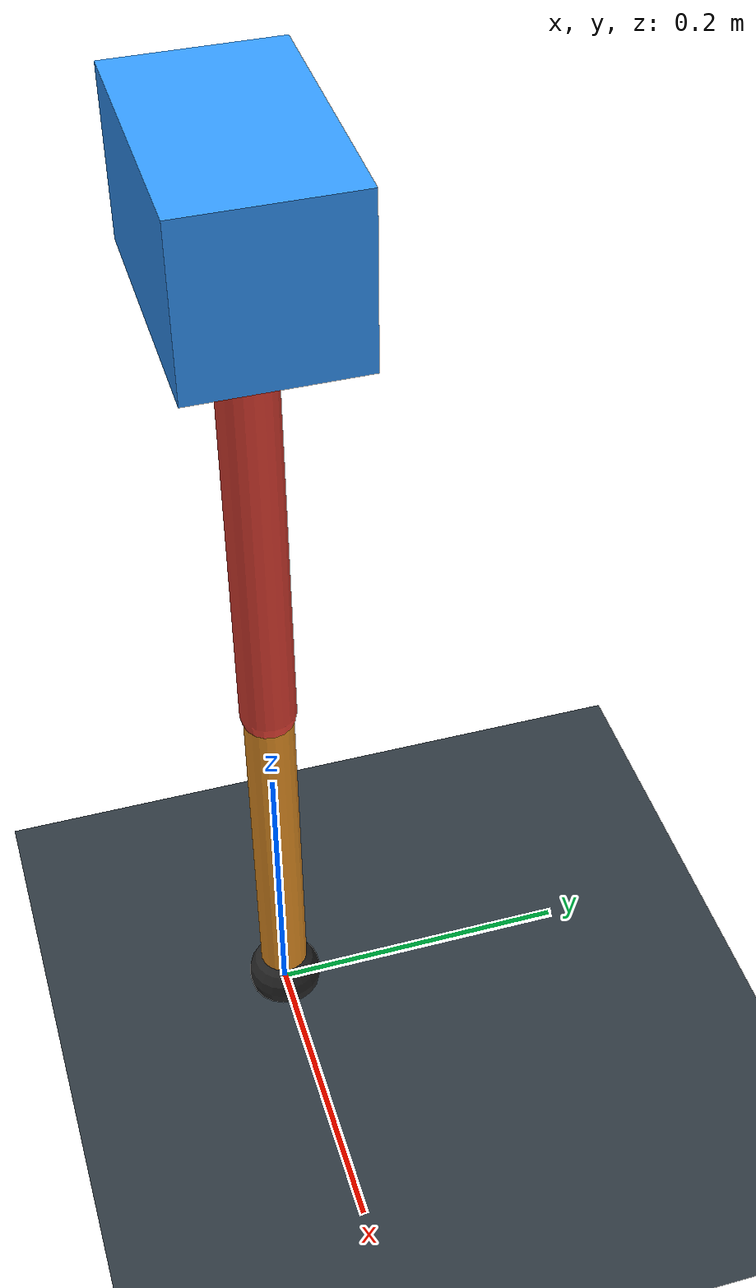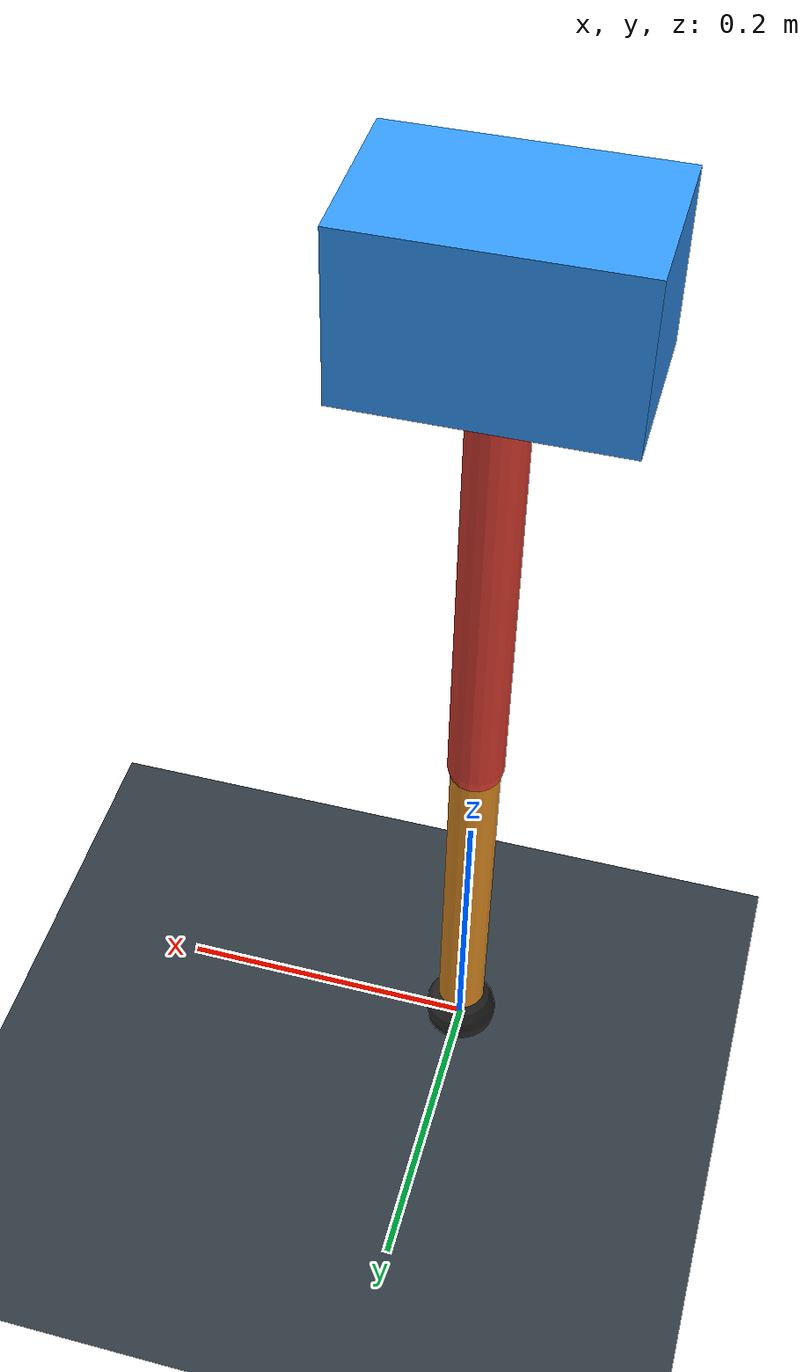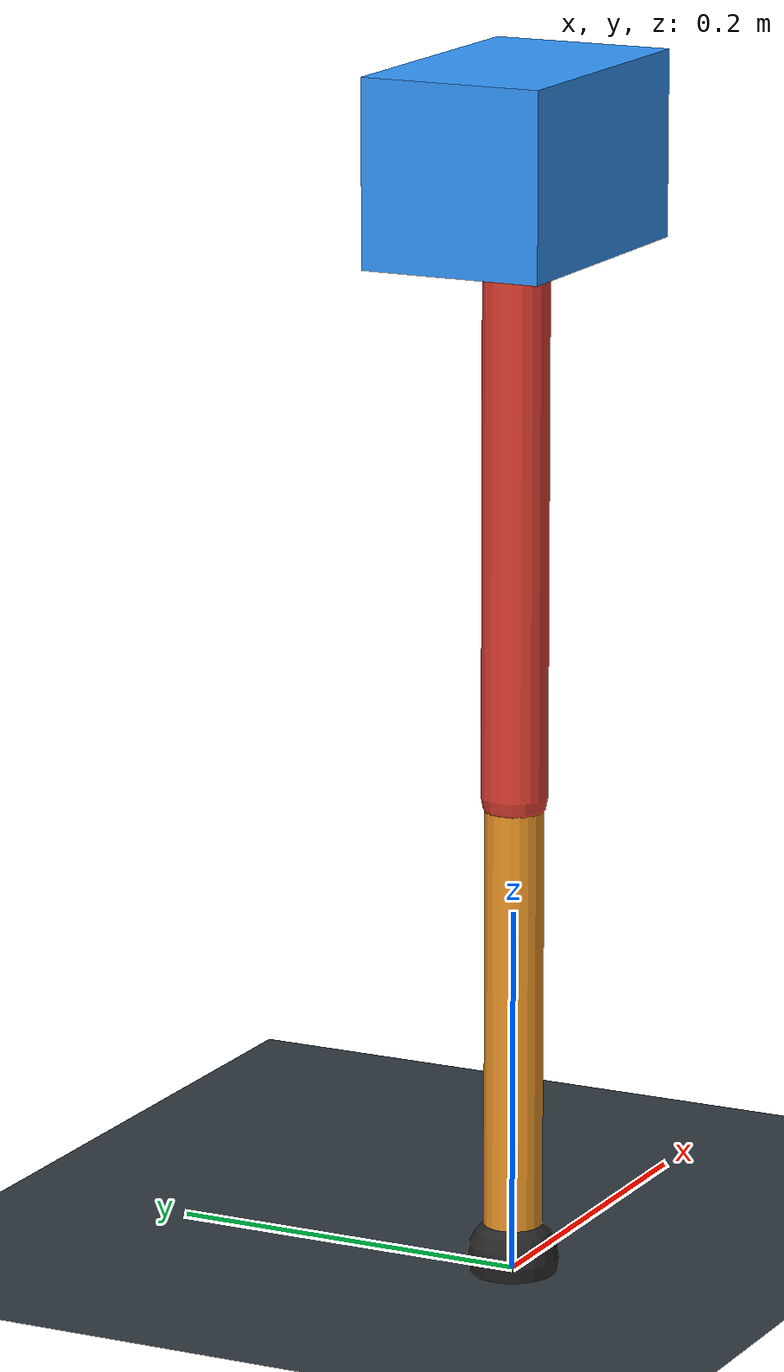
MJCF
<mujoco model="single_axis_two_bar">
  <compiler angle="radian" inertiafromgeom="true"/>
  <option timestep="0.001" integrator="implicitfast" gravity="0 0 -9.81"/>
  <default>
    <joint damping="0.08"/>
    <geom friction="1.2 0.01 0.0001" condim="3"/>
  </default>
  <worldbody>
    <geom name="floor" type="plane" size="5 5 0.1" rgba="0.18 0.22 0.25 1"/>
    <body name="carriage" pos="0 0 0.6069627272330362">
      <joint name="pole_slide" type="slide" axis="0 0 1"/>
      <geom name="payload" type="box" size="0.08 0.05 0.05" mass="2.643511432737379" rgba="0.2 0.6 1 1"/>
      <body name="thigh" pos="0 0 0">
        <joint name="hip" type="hinge" axis="0 1 0"/>
        <geom name="thigh_link" type="capsule" fromto="0 0 0 0 0 -0.3425028859801574" size="0.018" mass="0.2440378320371985" rgba="0.9 0.25 0.2 1"/>
        <body name="shank" pos="0 0 -0.3425028859801574">
          <joint name="knee" type="hinge" axis="0 1 0"/>
          <geom name="shank_link" type="capsule" fromto="0 0 0 0 0 -0.25745868848689024" size="0.016" mass="0.1834427175633233" rgba="0.95 0.6 0.15 1"/>
          <geom name="foot" type="sphere" pos="0 0 -0.25745868848689024" size="0.025" mass="0.03" rgba="0.15 0.15 0.15 1"/>
          <site name="toe" pos="0 0 -0.25745868848689024" size="0.008"/>
        </body>
      </body>
    </body>
  </worldbody>
  <actuator>
    <motor name="hip_motor" joint="hip" ctrlrange="-41.814073726112824 41.814073726112824"/>
    <motor name="knee_motor" joint="knee" ctrlrange="-90.49562663157579 90.49562663157579"/>
  </actuator>
</mujoco>
